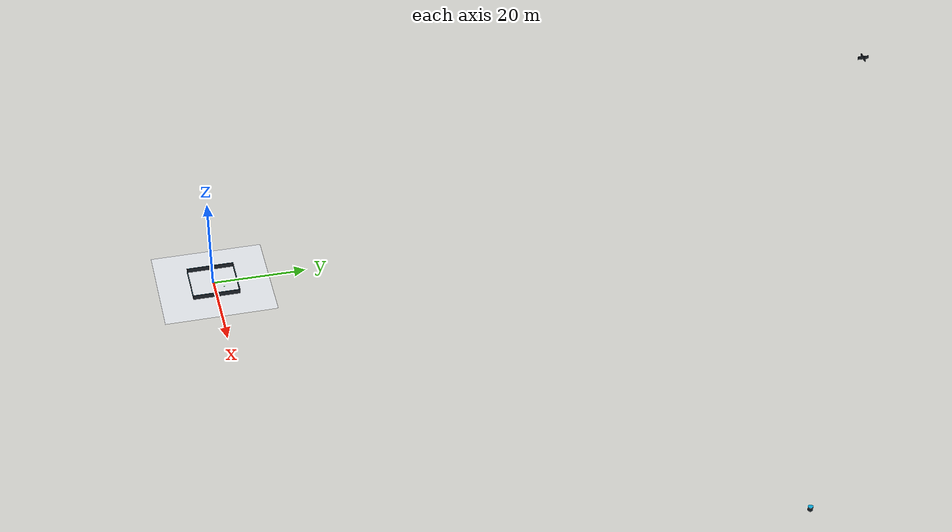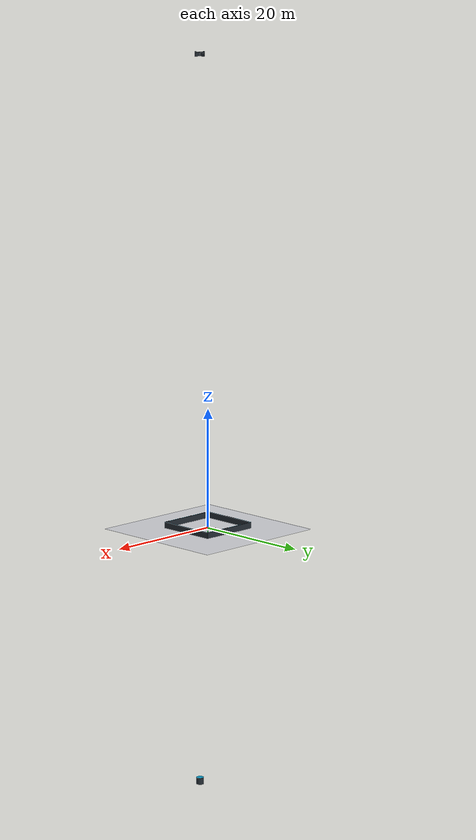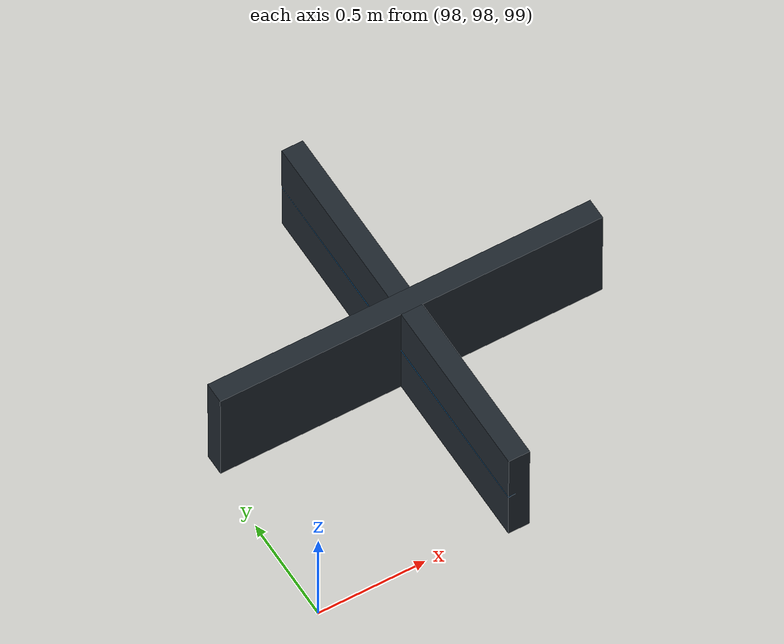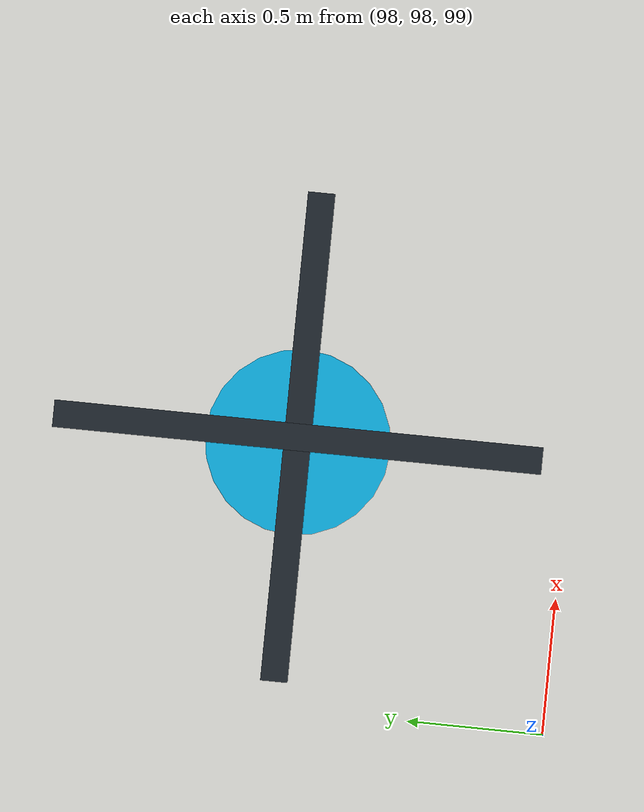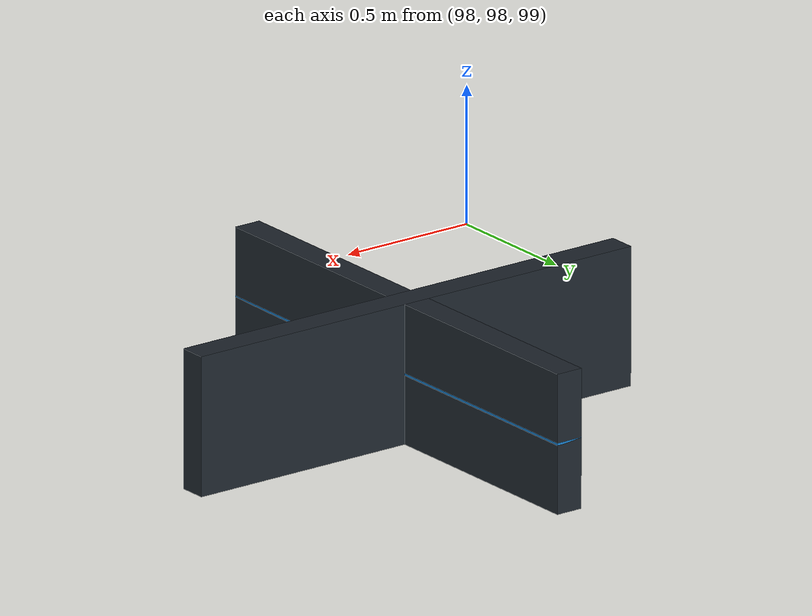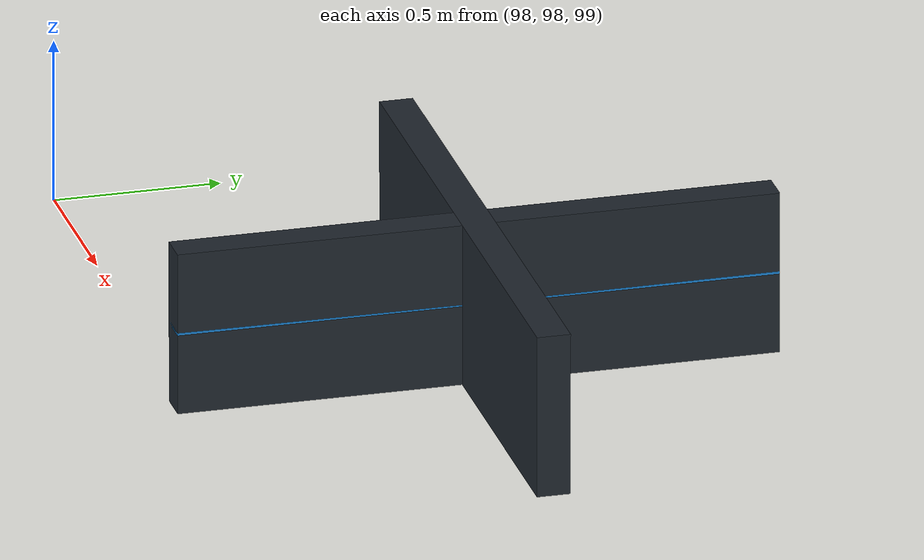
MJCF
<?xml version='1.0' encoding='utf-8'?>
<mujoco model="CARL Kinetic">
  <option timestep="0.01" gravity="0 0 -9.81" solver="Newton" integrator="implicit" />
  <compiler angle="radian" coordinate="local" inertiafromgeom="true" />

  <default>
    <geom contype="1" conaffinity="1" condim="3" friction="1.2 0.005 0.0001" />
    <joint damping="0.15" frictionloss="0.003" />
    <position ctrllimited="true" forcelimited="true" forcerange="-5.0 5.0" />
    <velocity forcelimited="true" forcerange="-2.5 2.5" />
  </default>

  <asset>
    <material name="matte_shell" rgba="0.90 0.92 0.94 1.0" roughness="0.4" />
    <material name="inner_frame" rgba="0.22 0.24 0.28 1.0" roughness="0.5" />
    <material name="laser_ring" rgba="0.00 0.80 1.00 1.0" emission="1.2" />
    <material name="wall_mat" rgba="0.12 0.15 0.18 1.0" roughness="0.9" />
    <material name="wall_glow" rgba="0.05 0.70 0.90 1.0" emission="0.8" />
    <material name="food_mat" rgba="0.20 0.90 0.30 1.0" emission="0.5" />
    <material name="danger_mat" rgba="0.90 0.15 0.15 1.0" emission="0.8" />

    <material name="obj_blue" rgba="0.20 0.45 0.90 1.0" roughness="0.3" />
    <material name="obj_orange" rgba="0.95 0.55 0.10 1.0" roughness="0.3" />
    <material name="obj_pink" rgba="0.90 0.40 0.60 1.0" roughness="0.4" />
    <material name="finger_mat" rgba="0.95 0.75 0.15 1.0" roughness="0.6" />

    <material name="predator_mat" rgba="0.80 0.05 0.05 1.0" emission="1.0" roughness="0.3" />
    <material name="predator_glow_mat" rgba="1.00 0.20 0.10 1.0" emission="1.5" />
    <material name="ghost_wall_mat" rgba="0.10 0.12 0.20 0.9" roughness="0.8" />
    <material name="ghost_glow_mat" rgba="0.10 0.50 0.80 1.0" emission="0.6" />
    <material name="debris_mat" rgba="0.35 0.30 0.25 1.0" roughness="1.0" />
  </asset>

  <worldbody>
    <light name="studio_sun" pos="2 1 5" dir="-0.3 -0.2 -1" diffuse="0.85 0.85 0.85" castshadow="true" />
    <geom name="floor" type="plane" size="12 12 0.1" rgba="0.93 0.94 0.96 1" friction="0.001 0.001 0.0001" />

    <geom name="wall_s" type="box" size="5.0 0.05 0.50" pos="0  -5.0  0.50" material="wall_mat" />
    <geom name="wall_n" type="box" size="5.0 0.05 0.50" pos="0   5.0  0.50" material="wall_mat" />
    <geom name="wall_w" type="box" size="0.05 5.0 0.50" pos="-5.0  0  0.50" material="wall_mat" />
    <geom name="wall_e" type="box" size="0.05 5.0 0.50" pos=" 5.0  0  0.50" material="wall_mat" />

    <geom name="wg_s" type="box" size="5.0 0.01 0.004" pos="0  -5.0  1.004" material="wall_glow" contype="0" conaffinity="0" />
    <geom name="wg_n" type="box" size="5.0 0.01 0.004" pos="0   5.0  1.004" material="wall_glow" contype="0" conaffinity="0" />
    <geom name="wg_w" type="box" size="0.01 5.0 0.004" pos="-5.0  0  1.004" material="wall_glow" contype="0" conaffinity="0" />
    <geom name="wg_e" type="box" size="0.01 5.0 0.004" pos=" 5.0  0  1.004" material="wall_glow" contype="0" conaffinity="0" />

    <geom name="obstacle" type="cylinder" size="0.5 0.45" pos="99 99 0.45" material="wall_mat" />
    <geom name="obstacle_glow" type="cylinder" size="0.52 0.004" pos="99 99 0.904" material="wall_glow" contype="0" conaffinity="0" />

    <geom name="food" type="sphere" size="0.12" pos="2.0 2.0 0.12" material="food_mat" contype="0" conaffinity="0" />

    <geom name="lwall_v_0_2" type="box" size="0.05 0.9 0.25" pos="99 99 99" material="wall_mat" />
    <geom name="lwall_v_2_0" type="box" size="0.05 0.9 0.25" pos="99 99 99" material="wall_mat" />
    <geom name="lwall_v_2_2" type="box" size="0.05 0.9 0.25" pos="99 99 99" material="wall_mat" />
    <geom name="lwall_v_3_1" type="box" size="0.05 0.9 0.25" pos="99 99 99" material="wall_mat" />
    <geom name="lwall_h_0_1" type="box" size="0.9 0.05 0.25" pos="99 99 99" material="wall_mat" />
    <geom name="lwall_h_1_1" type="box" size="0.9 0.05 0.25" pos="99 99 99" material="wall_mat" />
    <geom name="lwall_h_2_0" type="box" size="0.9 0.05 0.25" pos="99 99 99" material="wall_mat" />
    <geom name="lwall_h_2_2" type="box" size="0.9 0.05 0.25" pos="99 99 99" material="wall_mat" />
    <geom name="lwall_h_2_4" type="box" size="0.9 0.05 0.25" pos="99 99 99" material="wall_mat" />
    <geom name="lwall_h_3_2" type="box" size="0.9 0.05 0.25" pos="99 99 99" material="wall_mat" />
    <geom name="lwall_h_3_3" type="box" size="0.9 0.05 0.25" pos="99 99 99" material="wall_mat" />

    <body name="hazard_cube" pos="0 1.8 0.15">
        <joint name="hazard_joint" type="slide" axis="1 0 0" range="-1.5 1.5" damping="1.0" stiffness="0.0" />
        <geom name="dynamic_hazard" type="box" size="0.15 0.15 0.15" material="danger_mat" />
    </body>

    <body name="obj_cube_0" pos="1.5 1.5 0.008">
      <freejoint name="fj_cube_0" />
      <geom name="gcube_0" type="box" size="0.008 0.008 0.008" mass="0.01" material="obj_blue" contype="4" conaffinity="9" friction="2.0 0.01 0.002" />
    </body>

    <body name="obj_cube_1" pos="-1.5 2.5 0.008">
      <freejoint name="fj_cube_1" />
      <geom name="gcube_1" type="box" size="0.008 0.008 0.008" mass="0.01" material="obj_blue" contype="4" conaffinity="9" friction="2.0 0.01 0.002" />
    </body>

    <body name="obj_cube_2" pos="3.0 -1.0 0.008">
      <freejoint name="fj_cube_2" />
      <geom name="gcube_2" type="box" size="0.008 0.008 0.008" mass="0.01" material="obj_blue" contype="4" conaffinity="9" friction="2.0 0.01 0.002" />
    </body>

    <body name="obj_ball_0" pos="2.5 -1.5 0.008">
      <freejoint name="fj_ball_0" />
      <geom name="gball_0" type="sphere" size="0.008" mass="0.006" material="obj_orange" contype="4" conaffinity="9" friction="1.2 0.01 0.002" />
    </body>

    <body name="obj_ball_1" pos="-2.5 -2.0 0.008">
      <freejoint name="fj_ball_1" />
      <geom name="gball_1" type="sphere" size="0.008" mass="0.006" material="obj_orange" contype="4" conaffinity="9" friction="1.2 0.01 0.002" />
    </body>

    <body name="obj_toy" pos="-2.0 3.0 0.008">
      <freejoint name="fj_toy" />
      <geom name="gtoy" type="capsule" size="0.008 0.015" mass="0.012" material="obj_pink" contype="4" conaffinity="9" friction="1.6 0.01 0.002" />
    </body>

    <geom name="predator" type="sphere" size="0.18" pos="99 99 0.15" material="predator_mat" contype="0" conaffinity="0" />
    <geom name="predator_glow" type="sphere" size="0.22" pos="99 99 0.46" material="predator_glow_mat" contype="0" conaffinity="0" />

    <geom name="ghost_wall_0" type="box" size="0.05 0.9 0.25" pos="99 99 99" material="ghost_wall_mat" />
    <geom name="ghost_wall_1" type="box" size="0.05 0.9 0.25" pos="99 99 99" material="ghost_wall_mat" />
    <geom name="ghost_wall_2" type="box" size="0.05 0.9 0.25" pos="99 99 99" material="ghost_wall_mat" />
    <geom name="ghost_wall_3" type="box" size="0.05 0.9 0.25" pos="99 99 99" material="ghost_wall_mat" />
    <geom name="ghost_wall_4" type="box" size="0.05 0.9 0.25" pos="99 99 99" material="ghost_wall_mat" />
    <geom name="ghost_wall_5" type="box" size="0.05 0.9 0.25" pos="99 99 99" material="ghost_wall_mat" />
    <geom name="ghost_wall_6" type="box" size="0.05 0.9 0.25" pos="99 99 99" material="ghost_wall_mat" />
    <geom name="ghost_wall_7" type="box" size="0.05 0.9 0.25" pos="99 99 99" material="ghost_wall_mat" />
    <geom name="ghost_wall_8" type="box" size="0.05 0.9 0.25" pos="99 99 99" material="ghost_wall_mat" />
    <geom name="ghost_wall_9" type="box" size="0.05 0.9 0.25" pos="99 99 99" material="ghost_wall_mat" />
    <geom name="ghost_wall_10" type="box" size="0.05 0.9 0.25" pos="99 99 99" material="ghost_wall_mat" />
    <geom name="ghost_wall_11" type="box" size="0.05 0.9 0.25" pos="99 99 99" material="ghost_wall_mat" />
    <geom name="ghost_wall_12" type="box" size="0.05 0.9 0.25" pos="99 99 99" material="ghost_wall_mat" />
    <geom name="ghost_wall_13" type="box" size="0.05 0.9 0.25" pos="99 99 99" material="ghost_wall_mat" />
    <geom name="ghost_wall_14" type="box" size="0.05 0.9 0.25" pos="99 99 99" material="ghost_wall_mat" />
    <geom name="ghost_wall_15" type="box" size="0.05 0.9 0.25" pos="99 99 99" material="ghost_wall_mat" />

    <geom name="ghost_glow_0" type="box" size="0.05 0.9 0.004" pos="99 99 99" material="ghost_glow_mat" contype="0" conaffinity="0" />
    <geom name="ghost_glow_1" type="box" size="0.05 0.9 0.004" pos="99 99 99" material="ghost_glow_mat" contype="0" conaffinity="0" />
    <geom name="ghost_glow_2" type="box" size="0.05 0.9 0.004" pos="99 99 99" material="ghost_glow_mat" contype="0" conaffinity="0" />
    <geom name="ghost_glow_3" type="box" size="0.05 0.9 0.004" pos="99 99 99" material="ghost_glow_mat" contype="0" conaffinity="0" />
    <geom name="ghost_glow_4" type="box" size="0.05 0.9 0.004" pos="99 99 99" material="ghost_glow_mat" contype="0" conaffinity="0" />
    <geom name="ghost_glow_5" type="box" size="0.05 0.9 0.004" pos="99 99 99" material="ghost_glow_mat" contype="0" conaffinity="0" />
    <geom name="ghost_glow_6" type="box" size="0.05 0.9 0.004" pos="99 99 99" material="ghost_glow_mat" contype="0" conaffinity="0" />
    <geom name="ghost_glow_7" type="box" size="0.05 0.9 0.004" pos="99 99 99" material="ghost_glow_mat" contype="0" conaffinity="0" />
    <geom name="ghost_glow_8" type="box" size="0.05 0.9 0.004" pos="99 99 99" material="ghost_glow_mat" contype="0" conaffinity="0" />
    <geom name="ghost_glow_9" type="box" size="0.05 0.9 0.004" pos="99 99 99" material="ghost_glow_mat" contype="0" conaffinity="0" />
    <geom name="ghost_glow_10" type="box" size="0.05 0.9 0.004" pos="99 99 99" material="ghost_glow_mat" contype="0" conaffinity="0" />
    <geom name="ghost_glow_11" type="box" size="0.05 0.9 0.004" pos="99 99 99" material="ghost_glow_mat" contype="0" conaffinity="0" />
    <geom name="ghost_glow_12" type="box" size="0.05 0.9 0.004" pos="99 99 99" material="ghost_glow_mat" contype="0" conaffinity="0" />
    <geom name="ghost_glow_13" type="box" size="0.05 0.9 0.004" pos="99 99 99" material="ghost_glow_mat" contype="0" conaffinity="0" />
    <geom name="ghost_glow_14" type="box" size="0.05 0.9 0.004" pos="99 99 99" material="ghost_glow_mat" contype="0" conaffinity="0" />
    <geom name="ghost_glow_15" type="box" size="0.05 0.9 0.004" pos="99 99 99" material="ghost_glow_mat" contype="0" conaffinity="0" />

    <geom name="debris_0" type="sphere" size="0.05" pos="99 99 99" material="debris_mat" mass="0.3" />
    <geom name="debris_1" type="sphere" size="0.04" pos="99 99 99" material="debris_mat" mass="0.2" />
    <geom name="debris_2" type="box" size="0.04 0.03 0.03" pos="99 99 99" material="debris_mat" mass="0.25" />
    <geom name="debris_3" type="sphere" size="0.06" pos="99 99 99" material="debris_mat" mass="0.35" />
    <geom name="debris_4" type="box" size="0.05 0.04 0.02" pos="99 99 99" material="debris_mat" mass="0.2" />
    <geom name="debris_5" type="sphere" size="0.045" pos="99 99 99" material="debris_mat" mass="0.22" />
    <geom name="debris_6" type="box" size="0.035 0.035 0.04" pos="99 99 99" material="debris_mat" mass="0.18" />
    <geom name="debris_7" type="sphere" size="0.055" pos="99 99 99" material="debris_mat" mass="0.3" />
    <geom name="debris_8" type="box" size="0.04 0.05 0.025" pos="99 99 99" material="debris_mat" mass="0.22" />
    <geom name="debris_9" type="sphere" size="0.04" pos="99 99 99" material="debris_mat" mass="0.15" />
    <geom name="debris_10" type="box" size="0.03 0.04 0.035" pos="99 99 99" material="debris_mat" mass="0.2" />
    <geom name="debris_11" type="sphere" size="0.05" pos="99 99 99" material="debris_mat" mass="0.28" />

    <body name="drive_deck" pos="0 0 0.04">
      <freejoint name="spatial_identity" />

      <geom name="chassis" type="box" size="0.11 0.09 0.012" material="inner_frame" mass="2.5" contype="2" conaffinity="1" />

      <body name="lidar_scanner" pos="0.07 0 0.09">
        <geom type="cylinder" size="0.024 0.01" material="inner_frame" contype="0" conaffinity="0" />
        <geom type="cylinder" size="0.022 0.006" pos="0 0 0.006" material="laser_ring" contype="0" conaffinity="0" />
      </body>

      <body name="wheel_L" pos="0.0  0.11 0">
        <joint name="w_left" type="hinge" axis="0 1 0" damping="0.005" frictionloss="0.001" />
        <geom type="cylinder" size="0.04 0.016" euler="1.5708 0 0" material="inner_frame" friction="1.4" mass="0.05" contype="2" conaffinity="1" />
      </body>
      <body name="wheel_R" pos="0.0 -0.11 0">
        <joint name="w_right" type="hinge" axis="0 1 0" damping="0.005" frictionloss="0.001" />
        <geom type="cylinder" size="0.04 0.016" euler="1.5708 0 0" material="inner_frame" friction="1.4" mass="0.05" contype="2" conaffinity="1" />
      </body>
      <body name="w_caster" pos="-0.09 0 -0.022">
        <geom type="sphere" size="0.015" material="matte_shell" friction="0.002" mass="0.03" contype="2" conaffinity="1" />
      </body>
      <body name="w_caster_front" pos="0.09 0 -0.022">
        <geom type="sphere" size="0.015" material="matte_shell" friction="0.002" mass="0.03" contype="2" conaffinity="1" />
      </body>

      <body name="swaying_hip" pos="-0.01 0 0.015">
        <joint name="hip_pitch" type="hinge" axis="0 1 0" range="-0.55 0.55" stiffness="2.0" damping="0.2" />
        <joint name="hip_roll" type="hinge" axis="1 0 0" range="-0.38 0.38" stiffness="2.0" damping="0.2" />

        <body name="torso" pos="0 0 0.06">

          <geom name="torso_geom" type="box" size="0.05 0.06 0.07" material="matte_shell" mass="0.25" contype="2" conaffinity="1" />

          <body name="shoulder_link_L" pos="0 0.075 0.03">
            <joint name="shoulder_yaw_L" type="hinge" axis="0 0 1" range="-0.1 1.57" damping="2.0" />
            <geom name="gsl_L" type="sphere" size="0.015" material="inner_frame" mass="0.01" contype="2" conaffinity="1" />
            <body name="upper_arm_L" pos="0 0 0">
              <joint name="shoulder_L" type="hinge" axis="0 1 0" range="-2.0 2.0" damping="2.0" />
              <geom name="gua_L" type="capsule" fromto="0 0 0  0.12 0 0" size="0.012" material="inner_frame" mass="0.07" contype="2" conaffinity="1" />

              <body name="forearm_L" pos="0.12 0 0">
                <joint name="elbow_L" type="hinge" axis="0 1 0" range="-2.44 0" damping="1.5" />
                <geom name="gfa_L" type="capsule" fromto="0 0 0  0.11 0 0" size="0.010" material="matte_shell" mass="0.05" contype="2" conaffinity="1" />

                <body name="gripper_base_L" pos="0.11 0 0">
                  <joint name="wrist_L" type="hinge" axis="1 0 0" range="-1.57 1.57" damping="1.0" />
                  <geom name="gwb_L" type="box" size="0.012 0.014 0.012" material="inner_frame" mass="0.015" contype="2" conaffinity="1" />

                  <body name="finger_L_top" pos="0.012 0.016 0">
                    <joint name="grip_L" type="hinge" axis="0 0 1" range="0 0.52" damping="0.8" />
                    <geom name="finger_L_tip" type="box" size="0.018 0.005 0.010" pos="0.018 0 0" material="finger_mat" mass="0.01" contype="8" conaffinity="13" friction="2.0 0.01 0.001" />
                    <site name="touch_site_L" pos="0.036 0 0" size="0.008" rgba="1 0 0 0.3" />
                  </body>

                  <body name="finger_L_bot" pos="0.012 -0.016 0">
                    <geom name="finger_L_base" type="box" size="0.018 0.005 0.010" pos="0.018 0 0" material="finger_mat" mass="0.01" contype="8" conaffinity="13" friction="2.0 0.01 0.001" />
                  </body>
                </body>
              </body>
            </body>
          </body>

          <body name="shoulder_link_R" pos="0 -0.075 0.03">
            <joint name="shoulder_yaw_R" type="hinge" axis="0 0 1" range="-1.57 0.1" damping="2.0" />
            <geom name="gsl_R" type="sphere" size="0.015" material="inner_frame" mass="0.01" contype="2" conaffinity="1" />
            <body name="upper_arm_R" pos="0 0 0">
              <joint name="shoulder_R" type="hinge" axis="0 1 0" range="-2.0 2.0" damping="2.0" />
              <geom name="gua_R" type="capsule" fromto="0 0 0  0.12 0 0" size="0.012" material="inner_frame" mass="0.07" contype="2" conaffinity="1" />

              <body name="forearm_R" pos="0.12 0 0">
                <joint name="elbow_R" type="hinge" axis="0 1 0" range="-2.44 0" damping="1.5" />
                <geom name="gfa_R" type="capsule" fromto="0 0 0  0.11 0 0" size="0.010" material="matte_shell" mass="0.05" contype="2" conaffinity="1" />

                <body name="gripper_base_R" pos="0.11 0 0">
                  <joint name="wrist_R" type="hinge" axis="1 0 0" range="-1.57 1.57" damping="1.0" />
                  <geom name="gwb_R" type="box" size="0.012 0.014 0.012" material="inner_frame" mass="0.015" contype="2" conaffinity="1" />

                  <body name="finger_R_top" pos="0.012 0.016 0">
                    <joint name="grip_R" type="hinge" axis="0 0 1" range="0 0.52" damping="0.8" />
                    <geom name="finger_R_tip" type="box" size="0.018 0.005 0.010" pos="0.018 0 0" material="finger_mat" mass="0.01" contype="8" conaffinity="13" friction="2.0 0.01 0.001" />
                    <site name="touch_site_R" pos="0.036 0 0" size="0.008" rgba="1 0 0 0.3" />
                  </body>

                  <body name="finger_R_bot" pos="0.012 -0.016 0">
                    <geom name="finger_R_base" type="box" size="0.018 0.005 0.010" pos="0.018 0 0" material="finger_mat" mass="0.01" contype="8" conaffinity="13" friction="2.0 0.01 0.001" />
                  </body>
                </body>
              </body>
            </body>
          </body>

          <body name="neck_parallel_link" pos="0.01 0 0.07">
            <joint name="neck_sweep" type="hinge" axis="0 1 0" range="-0.6 0.7" stiffness="0.5" damping="0.1" />
            <geom type="box" size="0.01 0.015 0.05" pos="0 0 0.04" material="inner_frame" mass="0.02" contype="2" conaffinity="1" />

            <body name="head" pos="0 0 0.08">
              <joint name="head_pan" type="hinge" axis="0 0 1" range="-1.4 1.4" damping="0.1" />
              <geom type="box" size="0.045 0.045 0.035" material="matte_shell" mass="0.10" contype="2" conaffinity="1" />
              <geom type="box" size="0.01 0.035 0.015" pos="0.036 0 0" material="inner_frame" contype="2" conaffinity="1" />
            </body>
          </body>

        </body>
      </body>

    </body>
  </worldbody>

  <actuator>

    <velocity name="act_w_left" joint="w_left" kv="0.5" forcelimited="true" forcerange="-0.35 0.35" ctrllimited="true" ctrlrange="-35 35" />
    <velocity name="act_w_right" joint="w_right" kv="0.5" forcelimited="true" forcerange="-0.35 0.35" ctrllimited="true" ctrlrange="-35 35" />

    <position name="act_hip_pitch" joint="hip_pitch" kp="2.0" ctrlrange="-0.55 0.55" />
    <position name="act_hip_roll" joint="hip_roll" kp="2.0" ctrlrange="-0.38 0.38" />
    <position name="act_neck" joint="neck_sweep" kp="0.1" ctrlrange="-0.6 0.7" />
    <position name="act_head" joint="head_pan" kp="0.5" ctrlrange="-1.4 1.4" />

    <position name="act_shoulder_yaw_L" joint="shoulder_yaw_L" kp="120.0" ctrlrange="-0.1 1.57" />
    <position name="act_shoulder_L" joint="shoulder_L" kp="120.0" ctrlrange="-2.0 2.0" />
    <position name="act_elbow_L" joint="elbow_L" kp="100.0" ctrlrange="-2.44 0" />
    <position name="act_wrist_L" joint="wrist_L" kp="60.0" ctrlrange="-1.57 1.57" />
    <position name="act_grip_L" joint="grip_L" kp="50.0" ctrlrange="0 0.52" />

    <position name="act_shoulder_yaw_R" joint="shoulder_yaw_R" kp="120.0" ctrlrange="-1.57 0.1" />
    <position name="act_shoulder_R" joint="shoulder_R" kp="120.0" ctrlrange="-2.0 2.0" />
    <position name="act_elbow_R" joint="elbow_R" kp="100.0" ctrlrange="-2.44 0" />
    <position name="act_wrist_R" joint="wrist_R" kp="60.0" ctrlrange="-1.57 1.57" />
    <position name="act_grip_R" joint="grip_R" kp="50.0" ctrlrange="0 0.52" />
  </actuator>

  <sensor>
    <touch name="touch_L" site="touch_site_L" />
    <touch name="touch_R" site="touch_site_R" />
  </sensor>

</mujoco>
